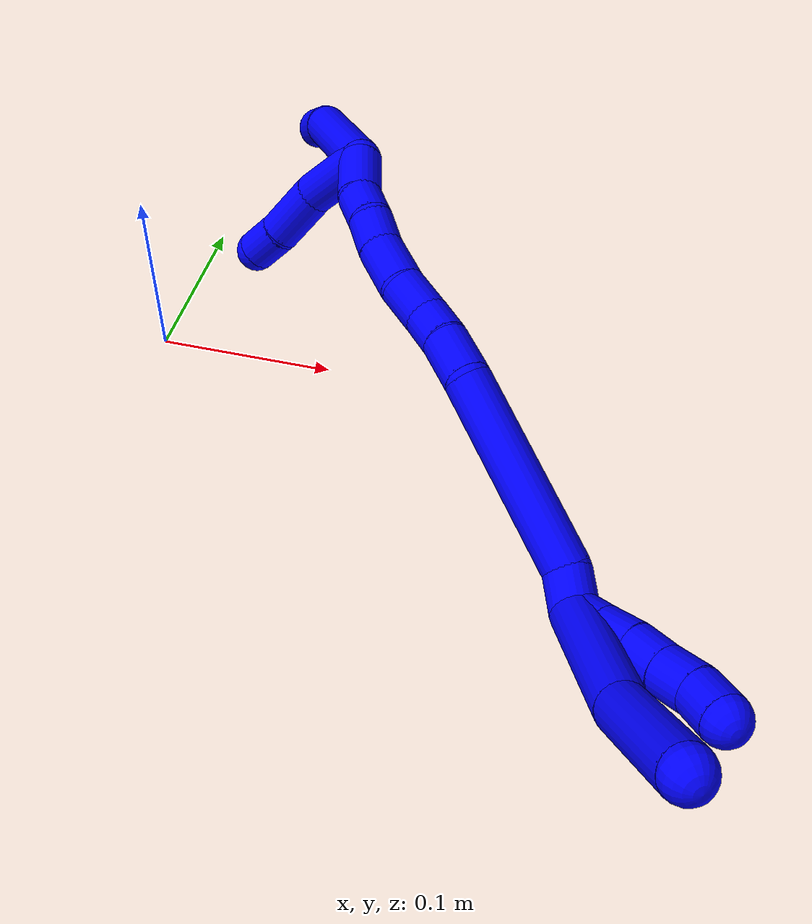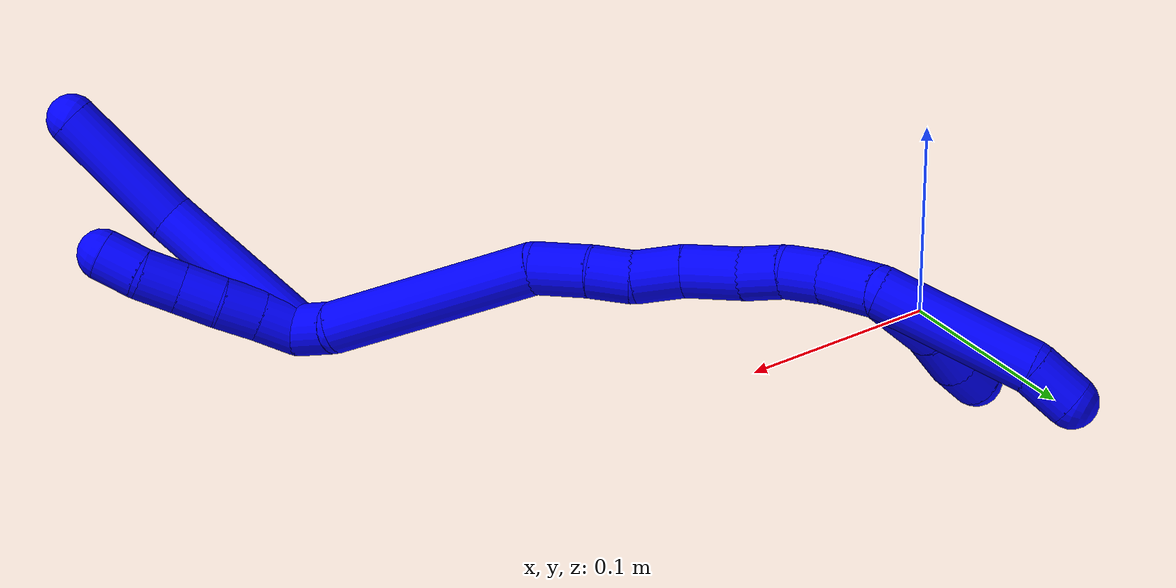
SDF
<sdf version="1.7">
 <world name="default">
  <model name="1">
   <static>0</static>
   <link name="1">
    <collision name="collision-cylinder-e_1_2_8">
     <pose>-0.007749 0.003835 0.040748 -0.093843 -0.187114 0.008812</pose>
     <geometry><cylinder><radius>0.0125</radius><length>0.08331</length></cylinder></geometry>
     <surface>
      <friction><ode><mu>1.16</mu><mu2>1.16</mu2><slip1>0</slip1><slip2>0</slip2></ode></friction>
      <contact><ode><kp>1e+06</kp><kd>1</kd><max_vel>0</max_vel><min_depth>0.001</min_depth></ode></contact>
     </surface>
    </collision>
    <visual name="visual-cylinder-e_1_2_8">
     <pose>-0.007749 0.003835 0.040748 -0.093843 -0.187114 0.008812</pose>
     <geometry><cylinder><radius>0.0125</radius><length>0.08331</length></cylinder></geometry>
     <material><ambient>0 0 1 1</ambient></material>
    </visual>
    <collision name="collision-cylinder-e_2_8_6">
     <pose>-0.019212 0.017314 0.113199 -0.295297 -0.111626 0.016619</pose>
     <geometry><cylinder><radius>0.0125</radius><length>0.06669</length></cylinder></geometry>
     <surface>
      <friction><ode><mu>1.16</mu><mu2>1.16</mu2><slip1>0</slip1><slip2>0</slip2></ode></friction>
      <contact><ode><kp>1e+06</kp><kd>1</kd><max_vel>0</max_vel><min_depth>0.001</min_depth></ode></contact>
     </surface>
    </collision>
    <visual name="visual-cylinder-e_2_8_6">
     <pose>-0.019212 0.017314 0.113199 -0.295297 -0.111626 0.016619</pose>
     <geometry><cylinder><radius>0.0125</radius><length>0.06669</length></cylinder></geometry>
     <material><ambient>0 0 1 1</ambient></material>
    </visual>
    <collision name="collision-cylinder-e_1_2_9">
     <pose>0.002928 0.001173 0.009489 -0.122989 0.297201 -0.018435</pose>
     <geometry><cylinder><radius>0.0125</radius><length>0.02</length></cylinder></geometry>
     <surface>
      <friction><ode><mu>1.16</mu><mu2>1.16</mu2><slip1>0</slip1><slip2>0</slip2></ode></friction>
      <contact><ode><kp>1e+06</kp><kd>1</kd><max_vel>0</max_vel><min_depth>0.001</min_depth></ode></contact>
     </surface>
    </collision>
    <visual name="visual-cylinder-e_1_2_9">
     <pose>0.002928 0.001173 0.009489 -0.122989 0.297201 -0.018435</pose>
     <geometry><cylinder><radius>0.0125</radius><length>0.02</length></cylinder></geometry>
     <material><ambient>0 0 1 1</ambient></material>
    </visual>
    <collision name="collision-cylinder-e_2_9_10">
     <pose>0.009378 0.003514 0.028265 -0.125108 0.359828 -0.022783</pose>
     <geometry><cylinder><radius>0.0125</radius><length>0.02</length></cylinder></geometry>
     <surface>
      <friction><ode><mu>1.16</mu><mu2>1.16</mu2><slip1>0</slip1><slip2>0</slip2></ode></friction>
      <contact><ode><kp>1e+06</kp><kd>1</kd><max_vel>0</max_vel><min_depth>0.001</min_depth></ode></contact>
     </surface>
    </collision>
    <visual name="visual-cylinder-e_2_9_10">
     <pose>0.009378 0.003514 0.028265 -0.125108 0.359828 -0.022783</pose>
     <geometry><cylinder><radius>0.0125</radius><length>0.02</length></cylinder></geometry>
     <material><ambient>0 0 1 1</ambient></material>
    </visual>
    <collision name="collision-cylinder-e_3_10_11">
     <pose>0.015329 0.005145 0.047241 -0.047745 0.245403 -0.005889</pose>
     <geometry><cylinder><radius>0.0125</radius><length>0.02</length></cylinder></geometry>
     <surface>
      <friction><ode><mu>1.16</mu><mu2>1.16</mu2><slip1>0</slip1><slip2>0</slip2></ode></friction>
      <contact><ode><kp>1e+06</kp><kd>1</kd><max_vel>0</max_vel><min_depth>0.001</min_depth></ode></contact>
     </surface>
    </collision>
    <visual name="visual-cylinder-e_3_10_11">
     <pose>0.015329 0.005145 0.047241 -0.047745 0.245403 -0.005889</pose>
     <geometry><cylinder><radius>0.0125</radius><length>0.02</length></cylinder></geometry>
     <material><ambient>0 0 1 1</ambient></material>
    </visual>
    <collision name="collision-cylinder-e_4_11_12">
     <pose>0.020621 0.006596 0.066461 -0.103351 0.290362 -0.015124</pose>
     <geometry><cylinder><radius>0.0125</radius><length>0.02</length></cylinder></geometry>
     <surface>
      <friction><ode><mu>1.16</mu><mu2>1.16</mu2><slip1>0</slip1><slip2>0</slip2></ode></friction>
      <contact><ode><kp>1e+06</kp><kd>1</kd><max_vel>0</max_vel><min_depth>0.001</min_depth></ode></contact>
     </surface>
    </collision>
    <visual name="visual-cylinder-e_4_11_12">
     <pose>0.020621 0.006596 0.066461 -0.103351 0.290362 -0.015124</pose>
     <geometry><cylinder><radius>0.0125</radius><length>0.02</length></cylinder></geometry>
     <material><ambient>0 0 1 1</ambient></material>
    </visual>
    <collision name="collision-cylinder-e_5_12_5">
     <pose>0.02415 0.00782 0.085966 -0.023583 0.066591 -0.000786</pose>
     <geometry><cylinder><radius>0.0125</radius><length>0.02</length></cylinder></geometry>
     <surface>
      <friction><ode><mu>1.16</mu><mu2>1.16</mu2><slip1>0</slip1><slip2>0</slip2></ode></friction>
      <contact><ode><kp>1e+06</kp><kd>1</kd><max_vel>0</max_vel><min_depth>0.001</min_depth></ode></contact>
     </surface>
    </collision>
    <visual name="visual-cylinder-e_5_12_5">
     <pose>0.02415 0.00782 0.085966 -0.023583 0.066591 -0.000786</pose>
     <geometry><cylinder><radius>0.0125</radius><length>0.02</length></cylinder></geometry>
     <material><ambient>0 0 1 1</ambient></material>
    </visual>
    <collision name="collision-cylinder-e_1_2_13">
     <pose>0.000176 0.007151 -0.007935 -2.40812 0.016469 -0.042869</pose>
     <geometry><cylinder><radius>0.0125</radius><length>0.021368</length></cylinder></geometry>
     <surface>
      <friction><ode><mu>1.16</mu><mu2>1.16</mu2><slip1>0</slip1><slip2>0</slip2></ode></friction>
      <contact><ode><kp>1e+06</kp><kd>1</kd><max_vel>0</max_vel><min_depth>0.001</min_depth></ode></contact>
     </surface>
    </collision>
    <visual name="visual-cylinder-e_1_2_13">
     <pose>0.000176 0.007151 -0.007935 -2.40812 0.016469 -0.042869</pose>
     <geometry><cylinder><radius>0.0125</radius><length>0.021368</length></cylinder></geometry>
     <material><ambient>0 0 1 1</ambient></material>
    </visual>
    <collision name="collision-cylinder-e_2_13_14">
     <pose>-0.016501 0.048567 -0.053269 -2.3999 -0.320781 0.788546</pose>
     <geometry><cylinder><radius>0.0125</radius><length>0.106896</length></cylinder></geometry>
     <surface>
      <friction><ode><mu>1.16</mu><mu2>1.16</mu2><slip1>0</slip1><slip2>0</slip2></ode></friction>
      <contact><ode><kp>1e+06</kp><kd>1</kd><max_vel>0</max_vel><min_depth>0.001</min_depth></ode></contact>
     </surface>
    </collision>
    <visual name="visual-cylinder-e_2_13_14">
     <pose>-0.016501 0.048567 -0.053269 -2.3999 -0.320781 0.788546</pose>
     <geometry><cylinder><radius>0.0125</radius><length>0.106896</length></cylinder></geometry>
     <material><ambient>0 0 1 1</ambient></material>
    </visual>
    <collision name="collision-cylinder-e_3_14_15">
     <pose>-0.035886 0.088405 -0.102948 -2.71557 -0.185663 0.812932</pose>
     <geometry><cylinder><radius>0.0125</radius><length>0.027443</length></cylinder></geometry>
     <surface>
      <friction><ode><mu>1.16</mu><mu2>1.16</mu2><slip1>0</slip1><slip2>0</slip2></ode></friction>
      <contact><ode><kp>1e+06</kp><kd>1</kd><max_vel>0</max_vel><min_depth>0.001</min_depth></ode></contact>
     </surface>
    </collision>
    <visual name="visual-cylinder-e_3_14_15">
     <pose>-0.035886 0.088405 -0.102948 -2.71557 -0.185663 0.812932</pose>
     <geometry><cylinder><radius>0.0125</radius><length>0.027443</length></cylinder></geometry>
     <material><ambient>0 0 1 1</ambient></material>
    </visual>
    <collision name="collision-cylinder-e_4_15_16">
     <pose>-0.040645 0.09693 -0.124867 -2.84442 -0.217298 1.25946</pose>
     <geometry><cylinder><radius>0.0125</radius><length>0.020647</length></cylinder></geometry>
     <surface>
      <friction><ode><mu>1.16</mu><mu2>1.16</mu2><slip1>0</slip1><slip2>0</slip2></ode></friction>
      <contact><ode><kp>1e+06</kp><kd>1</kd><max_vel>0</max_vel><min_depth>0.001</min_depth></ode></contact>
     </surface>
    </collision>
    <visual name="visual-cylinder-e_4_15_16">
     <pose>-0.040645 0.09693 -0.124867 -2.84442 -0.217298 1.25946</pose>
     <geometry><cylinder><radius>0.0125</radius><length>0.020647</length></cylinder></geometry>
     <material><ambient>0 0 1 1</ambient></material>
    </visual>
    <collision name="collision-cylinder-e_5_16_17">
     <pose>-0.047446 0.105141 -0.144212 -2.64502 -0.392908 1.3311</pose>
     <geometry><cylinder><radius>0.0125</radius><length>0.0239</length></cylinder></geometry>
     <surface>
      <friction><ode><mu>1.16</mu><mu2>1.16</mu2><slip1>0</slip1><slip2>0</slip2></ode></friction>
      <contact><ode><kp>1e+06</kp><kd>1</kd><max_vel>0</max_vel><min_depth>0.001</min_depth></ode></contact>
     </surface>
    </collision>
    <visual name="visual-cylinder-e_5_16_17">
     <pose>-0.047446 0.105141 -0.144212 -2.64502 -0.392908 1.3311</pose>
     <geometry><cylinder><radius>0.0125</radius><length>0.0239</length></cylinder></geometry>
     <material><ambient>0 0 1 1</ambient></material>
    </visual>
    <collision name="collision-cylinder-e_6_17_18">
     <pose>-0.054817 0.116387 -0.16679 -2.70625 -0.194436 0.830579</pose>
     <geometry><cylinder><radius>0.0125</radius><length>0.028938</length></cylinder></geometry>
     <surface>
      <friction><ode><mu>1.16</mu><mu2>1.16</mu2><slip1>0</slip1><slip2>0</slip2></ode></friction>
      <contact><ode><kp>1e+06</kp><kd>1</kd><max_vel>0</max_vel><min_depth>0.001</min_depth></ode></contact>
     </surface>
    </collision>
    <visual name="visual-cylinder-e_6_17_18">
     <pose>-0.054817 0.116387 -0.16679 -2.70625 -0.194436 0.830579</pose>
     <geometry><cylinder><radius>0.0125</radius><length>0.028938</length></cylinder></geometry>
     <material><ambient>0 0 1 1</ambient></material>
    </visual>
    <collision name="collision-cylinder-e_7_18_19">
     <pose>-0.058881 0.128256 -0.188024 -2.52856 -0.123427 0.385628</pose>
     <geometry><cylinder><radius>0.0125</radius><length>0.020604</length></cylinder></geometry>
     <surface>
      <friction><ode><mu>1.16</mu><mu2>1.16</mu2><slip1>0</slip1><slip2>0</slip2></ode></friction>
      <contact><ode><kp>1e+06</kp><kd>1</kd><max_vel>0</max_vel><min_depth>0.001</min_depth></ode></contact>
     </surface>
    </collision>
    <visual name="visual-cylinder-e_7_18_19">
     <pose>-0.058881 0.128256 -0.188024 -2.52856 -0.123427 0.385628</pose>
     <geometry><cylinder><radius>0.0125</radius><length>0.020604</length></cylinder></geometry>
     <material><ambient>0 0 1 1</ambient></material>
    </visual>
    <collision name="collision-cylinder-e_8_19_20">
     <pose>-0.061125 0.138035 -0.205696 -2.74519 -0.09645 0.471661</pose>
     <geometry><cylinder><radius>0.0125</radius><length>0.02028</length></cylinder></geometry>
     <surface>
      <friction><ode><mu>1.16</mu><mu2>1.16</mu2><slip1>0</slip1><slip2>0</slip2></ode></friction>
      <contact><ode><kp>1e+06</kp><kd>1</kd><max_vel>0</max_vel><min_depth>0.001</min_depth></ode></contact>
     </surface>
    </collision>
    <visual name="visual-cylinder-e_8_19_20">
     <pose>-0.061125 0.138035 -0.205696 -2.74519 -0.09645 0.471661</pose>
     <geometry><cylinder><radius>0.0125</radius><length>0.02028</length></cylinder></geometry>
     <material><ambient>0 0 1 1</ambient></material>
    </visual>
    <collision name="collision-cylinder-e_9_20_1">
     <pose>-0.05928 0.14928 -0.227731 -2.61789 0.189726 -0.682292</pose>
     <geometry><cylinder><radius>0.0125</radius><length>0.029925</length></cylinder></geometry>
     <surface>
      <friction><ode><mu>1.16</mu><mu2>1.16</mu2><slip1>0</slip1><slip2>0</slip2></ode></friction>
      <contact><ode><kp>1e+06</kp><kd>1</kd><max_vel>0</max_vel><min_depth>0.001</min_depth></ode></contact>
     </surface>
    </collision>
    <visual name="visual-cylinder-e_9_20_1">
     <pose>-0.05928 0.14928 -0.227731 -2.61789 0.189726 -0.682292</pose>
     <geometry><cylinder><radius>0.0125</radius><length>0.029925</length></cylinder></geometry>
     <material><ambient>0 0 1 1</ambient></material>
    </visual>
    <collision name="collision-cylinder-e_1_1_21">
     <pose>-0.065943 0.142955 -0.253075 2.31617 -0.471401 -1.00338</pose>
     <geometry><cylinder><radius>0.0125</radius><length>0.041769</length></cylinder></geometry>
     <surface>
      <friction><ode><mu>1.16</mu><mu2>1.16</mu2><slip1>0</slip1><slip2>0</slip2></ode></friction>
      <contact><ode><kp>1e+06</kp><kd>1</kd><max_vel>0</max_vel><min_depth>0.001</min_depth></ode></contact>
     </surface>
    </collision>
    <visual name="visual-cylinder-e_1_1_21">
     <pose>-0.065943 0.142955 -0.253075 2.31617 -0.471401 -1.00338</pose>
     <geometry><cylinder><radius>0.0125</radius><length>0.041769</length></cylinder></geometry>
     <material><ambient>0 0 1 1</ambient></material>
    </visual>
    <collision name="collision-cylinder-e_2_21_22">
     <pose>-0.083496 0.115276 -0.272693 2.03412 -0.475863 -0.747656</pose>
     <geometry><cylinder><radius>0.0125</radius><length>0.035228</length></cylinder></geometry>
     <surface>
      <friction><ode><mu>1.16</mu><mu2>1.16</mu2><slip1>0</slip1><slip2>0</slip2></ode></friction>
      <contact><ode><kp>1e+06</kp><kd>1</kd><max_vel>0</max_vel><min_depth>0.001</min_depth></ode></contact>
     </surface>
    </collision>
    <visual name="visual-cylinder-e_2_21_22">
     <pose>-0.083496 0.115276 -0.272693 2.03412 -0.475863 -0.747656</pose>
     <geometry><cylinder><radius>0.0125</radius><length>0.035228</length></cylinder></geometry>
     <material><ambient>0 0 1 1</ambient></material>
    </visual>
    <collision name="collision-cylinder-e_3_22_4">
     <pose>-0.097031 0.093154 -0.285735 2.21091 -0.495213 -0.932813</pose>
     <geometry><cylinder><radius>0.0125</radius><length>0.023003</length></cylinder></geometry>
     <surface>
      <friction><ode><mu>1.16</mu><mu2>1.16</mu2><slip1>0</slip1><slip2>0</slip2></ode></friction>
      <contact><ode><kp>1e+06</kp><kd>1</kd><max_vel>0</max_vel><min_depth>0.001</min_depth></ode></contact>
     </surface>
    </collision>
    <visual name="visual-cylinder-e_3_22_4">
     <pose>-0.097031 0.093154 -0.285735 2.21091 -0.495213 -0.932813</pose>
     <geometry><cylinder><radius>0.0125</radius><length>0.023003</length></cylinder></geometry>
     <material><ambient>0 0 1 1</ambient></material>
    </visual>
    <collision name="collision-cylinder-e_1_1_23">
     <pose>-0.057281 0.157903 -0.278724 -3.1083 -0.021482 1.14603</pose>
     <geometry><cylinder><radius>0.0125</radius><length>0.076598</length></cylinder></geometry>
     <surface>
      <friction><ode><mu>1.16</mu><mu2>1.16</mu2><slip1>0</slip1><slip2>0</slip2></ode></friction>
      <contact><ode><kp>1e+06</kp><kd>1</kd><max_vel>0</max_vel><min_depth>0.001</min_depth></ode></contact>
     </surface>
    </collision>
    <visual name="visual-cylinder-e_1_1_23">
     <pose>-0.057281 0.157903 -0.278724 -3.1083 -0.021482 1.14603</pose>
     <geometry><cylinder><radius>0.0125</radius><length>0.076598</length></cylinder></geometry>
     <material><ambient>0 0 1 1</ambient></material>
    </visual>
    <collision name="collision-cylinder-e_2_23_3">
     <pose>-0.057657 0.155897 -0.328216 2.85725 0.038172 0.265146</pose>
     <geometry><cylinder><radius>0.0125</radius><length>0.023402</length></cylinder></geometry>
     <surface>
      <friction><ode><mu>1.16</mu><mu2>1.16</mu2><slip1>0</slip1><slip2>0</slip2></ode></friction>
      <contact><ode><kp>1e+06</kp><kd>1</kd><max_vel>0</max_vel><min_depth>0.001</min_depth></ode></contact>
     </surface>
    </collision>
    <visual name="visual-cylinder-e_2_23_3">
     <pose>-0.057657 0.155897 -0.328216 2.85725 0.038172 0.265146</pose>
     <geometry><cylinder><radius>0.0125</radius><length>0.023402</length></cylinder></geometry>
     <material><ambient>0 0 1 1</ambient></material>
    </visual>
    <collision name="collision-sphere-3">
     <pose>-0.057211 0.152617 -0.339439 0 -0 0</pose>
     <geometry><sphere><radius>0.0125</radius></sphere></geometry>
     <surface>
      <friction><ode><mu>1.16</mu><mu2>1.16</mu2><slip1>0</slip1><slip2>0</slip2></ode></friction>
      <contact><ode><kp>1e+06</kp><kd>1</kd><max_vel>0</max_vel><min_depth>0.001</min_depth></ode></contact>
     </surface>
    </collision>
    <visual name="visual-sphere-3">
     <pose>-0.057211 0.152617 -0.339439 0 -0 0</pose>
     <geometry><sphere><radius>0.0125</radius></sphere></geometry>
     <material><ambient>0 0 1 1</ambient></material>
    </visual>
    <collision name="collision-sphere-23">
     <pose>-0.058104 0.159177 -0.316994 0 -0 0</pose>
     <geometry><sphere><radius>0.0125</radius></sphere></geometry>
     <surface>
      <friction><ode><mu>1.16</mu><mu2>1.16</mu2><slip1>0</slip1><slip2>0</slip2></ode></friction>
      <contact><ode><kp>1e+06</kp><kd>1</kd><max_vel>0</max_vel><min_depth>0.001</min_depth></ode></contact>
     </surface>
    </collision>
    <visual name="visual-sphere-23">
     <pose>-0.058104 0.159177 -0.316994 0 -0 0</pose>
     <geometry><sphere><radius>0.0125</radius></sphere></geometry>
     <material><ambient>0 0 1 1</ambient></material>
    </visual>
    <collision name="collision-sphere-4">
     <pose>-0.102497 0.085037 -0.291779 0 -0 0</pose>
     <geometry><sphere><radius>0.0125</radius></sphere></geometry>
     <surface>
      <friction><ode><mu>1.16</mu><mu2>1.16</mu2><slip1>0</slip1><slip2>0</slip2></ode></friction>
      <contact><ode><kp>1e+06</kp><kd>1</kd><max_vel>0</max_vel><min_depth>0.001</min_depth></ode></contact>
     </surface>
    </collision>
    <visual name="visual-sphere-4">
     <pose>-0.102497 0.085037 -0.291779 0 -0 0</pose>
     <geometry><sphere><radius>0.0125</radius></sphere></geometry>
     <material><ambient>0 0 1 1</ambient></material>
    </visual>
    <collision name="collision-sphere-22">
     <pose>-0.091566 0.10127 -0.27969 0 -0 0</pose>
     <geometry><sphere><radius>0.0125</radius></sphere></geometry>
     <surface>
      <friction><ode><mu>1.16</mu><mu2>1.16</mu2><slip1>0</slip1><slip2>0</slip2></ode></friction>
      <contact><ode><kp>1e+06</kp><kd>1</kd><max_vel>0</max_vel><min_depth>0.001</min_depth></ode></contact>
     </surface>
    </collision>
    <visual name="visual-sphere-22">
     <pose>-0.091566 0.10127 -0.27969 0 -0 0</pose>
     <geometry><sphere><radius>0.0125</radius></sphere></geometry>
     <material><ambient>0 0 1 1</ambient></material>
    </visual>
    <collision name="collision-sphere-21">
     <pose>-0.075427 0.129283 -0.265695 0 -0 0</pose>
     <geometry><sphere><radius>0.0125</radius></sphere></geometry>
     <surface>
      <friction><ode><mu>1.16</mu><mu2>1.16</mu2><slip1>0</slip1><slip2>0</slip2></ode></friction>
      <contact><ode><kp>1e+06</kp><kd>1</kd><max_vel>0</max_vel><min_depth>0.001</min_depth></ode></contact>
     </surface>
    </collision>
    <visual name="visual-sphere-21">
     <pose>-0.075427 0.129283 -0.265695 0 -0 0</pose>
     <geometry><sphere><radius>0.0125</radius></sphere></geometry>
     <material><ambient>0 0 1 1</ambient></material>
    </visual>
    <collision name="collision-sphere-1">
     <pose>-0.056458 0.156628 -0.240455 0 -0 0</pose>
     <geometry><sphere><radius>0.0125</radius></sphere></geometry>
     <surface>
      <friction><ode><mu>1.16</mu><mu2>1.16</mu2><slip1>0</slip1><slip2>0</slip2></ode></friction>
      <contact><ode><kp>1e+06</kp><kd>1</kd><max_vel>0</max_vel><min_depth>0.001</min_depth></ode></contact>
     </surface>
    </collision>
    <visual name="visual-sphere-1">
     <pose>-0.056458 0.156628 -0.240455 0 -0 0</pose>
     <geometry><sphere><radius>0.0125</radius></sphere></geometry>
     <material><ambient>0 0 1 1</ambient></material>
    </visual>
    <collision name="collision-sphere-11">
     <pose>0.017758 0.005608 0.05693 0 -0 0</pose>
     <geometry><sphere><radius>0.0125</radius></sphere></geometry>
     <surface>
      <friction><ode><mu>1.16</mu><mu2>1.16</mu2><slip1>0</slip1><slip2>0</slip2></ode></friction>
      <contact><ode><kp>1e+06</kp><kd>1</kd><max_vel>0</max_vel><min_depth>0.001</min_depth></ode></contact>
     </surface>
    </collision>
    <visual name="visual-sphere-11">
     <pose>0.017758 0.005608 0.05693 0 -0 0</pose>
     <geometry><sphere><radius>0.0125</radius></sphere></geometry>
     <material><ambient>0 0 1 1</ambient></material>
    </visual>
    <collision name="collision-sphere-10">
     <pose>0.012899 0.004682 0.037552 0 -0 0</pose>
     <geometry><sphere><radius>0.0125</radius></sphere></geometry>
     <surface>
      <friction><ode><mu>1.16</mu><mu2>1.16</mu2><slip1>0</slip1><slip2>0</slip2></ode></friction>
      <contact><ode><kp>1e+06</kp><kd>1</kd><max_vel>0</max_vel><min_depth>0.001</min_depth></ode></contact>
     </surface>
    </collision>
    <visual name="visual-sphere-10">
     <pose>0.012899 0.004682 0.037552 0 -0 0</pose>
     <geometry><sphere><radius>0.0125</radius></sphere></geometry>
     <material><ambient>0 0 1 1</ambient></material>
    </visual>
    <collision name="collision-sphere-6">
     <pose>-0.022927 0.026958 0.144902 0 -0 0</pose>
     <geometry><sphere><radius>0.0125</radius></sphere></geometry>
     <surface>
      <friction><ode><mu>1.16</mu><mu2>1.16</mu2><slip1>0</slip1><slip2>0</slip2></ode></friction>
      <contact><ode><kp>1e+06</kp><kd>1</kd><max_vel>0</max_vel><min_depth>0.001</min_depth></ode></contact>
     </surface>
    </collision>
    <visual name="visual-sphere-6">
     <pose>-0.022927 0.026958 0.144902 0 -0 0</pose>
     <geometry><sphere><radius>0.0125</radius></sphere></geometry>
     <material><ambient>0 0 1 1</ambient></material>
    </visual>
    <collision name="collision-sphere-9">
     <pose>0.005857 0.002346 0.018979 0 -0 0</pose>
     <geometry><sphere><radius>0.0125</radius></sphere></geometry>
     <surface>
      <friction><ode><mu>1.16</mu><mu2>1.16</mu2><slip1>0</slip1><slip2>0</slip2></ode></friction>
      <contact><ode><kp>1e+06</kp><kd>1</kd><max_vel>0</max_vel><min_depth>0.001</min_depth></ode></contact>
     </surface>
    </collision>
    <visual name="visual-sphere-9">
     <pose>0.005857 0.002346 0.018979 0 -0 0</pose>
     <geometry><sphere><radius>0.0125</radius></sphere></geometry>
     <material><ambient>0 0 1 1</ambient></material>
    </visual>
    <collision name="collision-sphere-2">
     <geometry><sphere><radius>0.0125</radius></sphere></geometry>
     <surface>
      <friction><ode><mu>1.16</mu><mu2>1.16</mu2><slip1>0</slip1><slip2>0</slip2></ode></friction>
      <contact><ode><kp>1e+06</kp><kd>1</kd><max_vel>0</max_vel><min_depth>0.001</min_depth></ode></contact>
     </surface>
    </collision>
    <visual name="visual-sphere-2">
     <geometry><sphere><radius>0.0125</radius></sphere></geometry>
     <material><ambient>0 0 1 1</ambient></material>
    </visual>
    <collision name="collision-sphere-19">
     <pose>-0.060149 0.134138 -0.196386 0 -0 0</pose>
     <geometry><sphere><radius>0.0125</radius></sphere></geometry>
     <surface>
      <friction><ode><mu>1.16</mu><mu2>1.16</mu2><slip1>0</slip1><slip2>0</slip2></ode></friction>
      <contact><ode><kp>1e+06</kp><kd>1</kd><max_vel>0</max_vel><min_depth>0.001</min_depth></ode></contact>
     </surface>
    </collision>
    <visual name="visual-sphere-19">
     <pose>-0.060149 0.134138 -0.196386 0 -0 0</pose>
     <geometry><sphere><radius>0.0125</radius></sphere></geometry>
     <material><ambient>0 0 1 1</ambient></material>
    </visual>
    <collision name="collision-sphere-8">
     <pose>-0.015498 0.00767 0.081496 0 -0 0</pose>
     <geometry><sphere><radius>0.0125</radius></sphere></geometry>
     <surface>
      <friction><ode><mu>1.16</mu><mu2>1.16</mu2><slip1>0</slip1><slip2>0</slip2></ode></friction>
      <contact><ode><kp>1e+06</kp><kd>1</kd><max_vel>0</max_vel><min_depth>0.001</min_depth></ode></contact>
     </surface>
    </collision>
    <visual name="visual-sphere-8">
     <pose>-0.015498 0.00767 0.081496 0 -0 0</pose>
     <geometry><sphere><radius>0.0125</radius></sphere></geometry>
     <material><ambient>0 0 1 1</ambient></material>
    </visual>
    <collision name="collision-sphere-12">
     <pose>0.023484 0.007585 0.075991 0 -0 0</pose>
     <geometry><sphere><radius>0.0125</radius></sphere></geometry>
     <surface>
      <friction><ode><mu>1.16</mu><mu2>1.16</mu2><slip1>0</slip1><slip2>0</slip2></ode></friction>
      <contact><ode><kp>1e+06</kp><kd>1</kd><max_vel>0</max_vel><min_depth>0.001</min_depth></ode></contact>
     </surface>
    </collision>
    <visual name="visual-sphere-12">
     <pose>0.023484 0.007585 0.075991 0 -0 0</pose>
     <geometry><sphere><radius>0.0125</radius></sphere></geometry>
     <material><ambient>0 0 1 1</ambient></material>
    </visual>
    <collision name="collision-sphere-5">
     <pose>0.024815 0.008055 0.095941 0 -0 0</pose>
     <geometry><sphere><radius>0.0125</radius></sphere></geometry>
     <surface>
      <friction><ode><mu>1.16</mu><mu2>1.16</mu2><slip1>0</slip1><slip2>0</slip2></ode></friction>
      <contact><ode><kp>1e+06</kp><kd>1</kd><max_vel>0</max_vel><min_depth>0.001</min_depth></ode></contact>
     </surface>
    </collision>
    <visual name="visual-sphere-5">
     <pose>0.024815 0.008055 0.095941 0 -0 0</pose>
     <geometry><sphere><radius>0.0125</radius></sphere></geometry>
     <material><ambient>0 0 1 1</ambient></material>
    </visual>
    <collision name="collision-sphere-13">
     <pose>0.000352 0.014303 -0.015871 0 -0 0</pose>
     <geometry><sphere><radius>0.0125</radius></sphere></geometry>
     <surface>
      <friction><ode><mu>1.16</mu><mu2>1.16</mu2><slip1>0</slip1><slip2>0</slip2></ode></friction>
      <contact><ode><kp>1e+06</kp><kd>1</kd><max_vel>0</max_vel><min_depth>0.001</min_depth></ode></contact>
     </surface>
    </collision>
    <visual name="visual-sphere-13">
     <pose>0.000352 0.014303 -0.015871 0 -0 0</pose>
     <geometry><sphere><radius>0.0125</radius></sphere></geometry>
     <material><ambient>0 0 1 1</ambient></material>
    </visual>
    <collision name="collision-sphere-14">
     <pose>-0.033353 0.082832 -0.090668 0 -0 0</pose>
     <geometry><sphere><radius>0.0125</radius></sphere></geometry>
     <surface>
      <friction><ode><mu>1.16</mu><mu2>1.16</mu2><slip1>0</slip1><slip2>0</slip2></ode></friction>
      <contact><ode><kp>1e+06</kp><kd>1</kd><max_vel>0</max_vel><min_depth>0.001</min_depth></ode></contact>
     </surface>
    </collision>
    <visual name="visual-sphere-14">
     <pose>-0.033353 0.082832 -0.090668 0 -0 0</pose>
     <geometry><sphere><radius>0.0125</radius></sphere></geometry>
     <material><ambient>0 0 1 1</ambient></material>
    </visual>
    <collision name="collision-sphere-15">
     <pose>-0.038419 0.093978 -0.115228 0 -0 0</pose>
     <geometry><sphere><radius>0.0125</radius></sphere></geometry>
     <surface>
      <friction><ode><mu>1.16</mu><mu2>1.16</mu2><slip1>0</slip1><slip2>0</slip2></ode></friction>
      <contact><ode><kp>1e+06</kp><kd>1</kd><max_vel>0</max_vel><min_depth>0.001</min_depth></ode></contact>
     </surface>
    </collision>
    <visual name="visual-sphere-15">
     <pose>-0.038419 0.093978 -0.115228 0 -0 0</pose>
     <geometry><sphere><radius>0.0125</radius></sphere></geometry>
     <material><ambient>0 0 1 1</ambient></material>
    </visual>
    <collision name="collision-sphere-16">
     <pose>-0.042871 0.099881 -0.134506 0 -0 0</pose>
     <geometry><sphere><radius>0.0125</radius></sphere></geometry>
     <surface>
      <friction><ode><mu>1.16</mu><mu2>1.16</mu2><slip1>0</slip1><slip2>0</slip2></ode></friction>
      <contact><ode><kp>1e+06</kp><kd>1</kd><max_vel>0</max_vel><min_depth>0.001</min_depth></ode></contact>
     </surface>
    </collision>
    <visual name="visual-sphere-16">
     <pose>-0.042871 0.099881 -0.134506 0 -0 0</pose>
     <geometry><sphere><radius>0.0125</radius></sphere></geometry>
     <material><ambient>0 0 1 1</ambient></material>
    </visual>
    <collision name="collision-sphere-17">
     <pose>-0.052021 0.1104 -0.153918 0 -0 0</pose>
     <geometry><sphere><radius>0.0125</radius></sphere></geometry>
     <surface>
      <friction><ode><mu>1.16</mu><mu2>1.16</mu2><slip1>0</slip1><slip2>0</slip2></ode></friction>
      <contact><ode><kp>1e+06</kp><kd>1</kd><max_vel>0</max_vel><min_depth>0.001</min_depth></ode></contact>
     </surface>
    </collision>
    <visual name="visual-sphere-17">
     <pose>-0.052021 0.1104 -0.153918 0 -0 0</pose>
     <geometry><sphere><radius>0.0125</radius></sphere></geometry>
     <material><ambient>0 0 1 1</ambient></material>
    </visual>
    <collision name="collision-sphere-18">
     <pose>-0.057612 0.122374 -0.179662 0 -0 0</pose>
     <geometry><sphere><radius>0.0125</radius></sphere></geometry>
     <surface>
      <friction><ode><mu>1.16</mu><mu2>1.16</mu2><slip1>0</slip1><slip2>0</slip2></ode></friction>
      <contact><ode><kp>1e+06</kp><kd>1</kd><max_vel>0</max_vel><min_depth>0.001</min_depth></ode></contact>
     </surface>
    </collision>
    <visual name="visual-sphere-18">
     <pose>-0.057612 0.122374 -0.179662 0 -0 0</pose>
     <geometry><sphere><radius>0.0125</radius></sphere></geometry>
     <material><ambient>0 0 1 1</ambient></material>
    </visual>
    <collision name="collision-sphere-20">
     <pose>-0.062102 0.141932 -0.215006 0 -0 0</pose>
     <geometry><sphere><radius>0.0125</radius></sphere></geometry>
     <surface>
      <friction><ode><mu>1.16</mu><mu2>1.16</mu2><slip1>0</slip1><slip2>0</slip2></ode></friction>
      <contact><ode><kp>1e+06</kp><kd>1</kd><max_vel>0</max_vel><min_depth>0.001</min_depth></ode></contact>
     </surface>
    </collision>
    <visual name="visual-sphere-20">
     <pose>-0.062102 0.141932 -0.215006 0 -0 0</pose>
     <geometry><sphere><radius>0.0125</radius></sphere></geometry>
     <material><ambient>0 0 1 1</ambient></material>
    </visual>
    <inertial>
     <pose>-0.032899 0.073919 -0.099318 0 -0 0</pose>
     <mass>0.75</mass>
     <inertia>
      <ixx>0.000292</ixx>
      <ixy>0</ixy>
      <ixz>0</ixz>
      <iyy>0.000132</iyy>
      <iyz>0</iyz>
      <izz>-3.8e-05</izz>
     </inertia>
    </inertial>
   </link>
   <pose>0.26413 -0.140631 0.011493 1.21667 0.206037 0.481833</pose>
  </model>
 </world>
</sdf>
